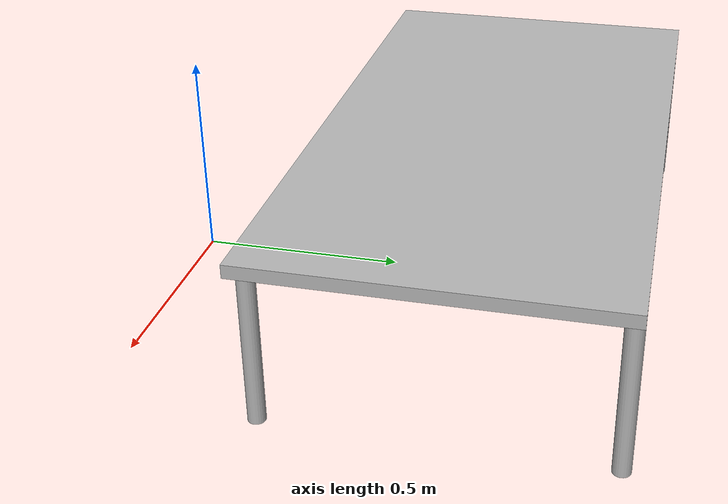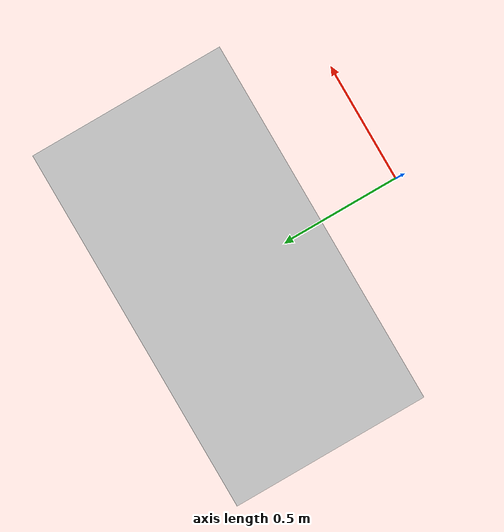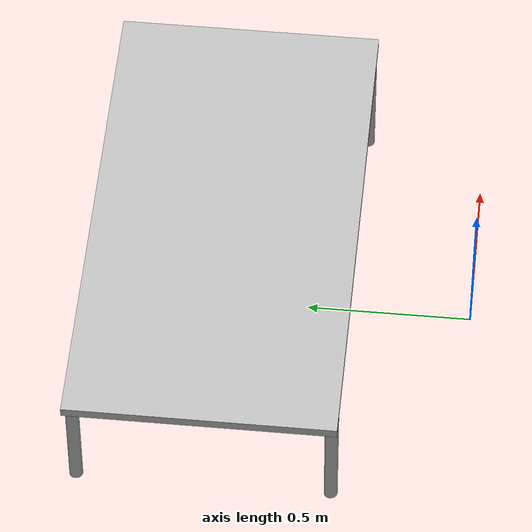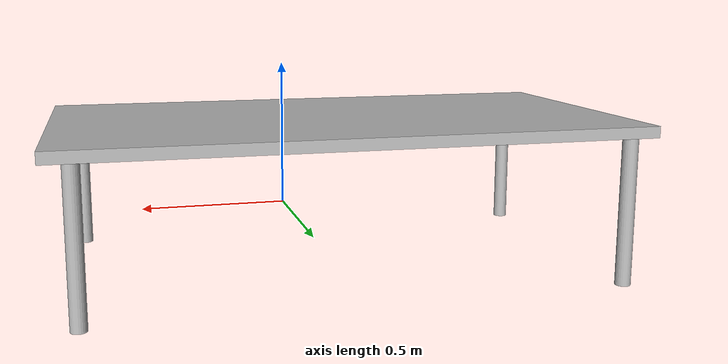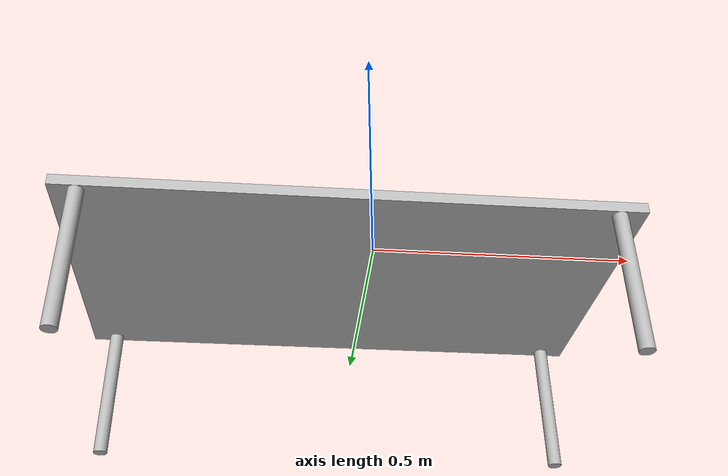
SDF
<?xml version="1.0" ?>
<sdf version="1.5">
  <model name="table">
    <static>true</static>
    <link name="link">
      <collision name="surface">
        <pose>0 0.75 0.4 0 0 0</pose> <!-- テーブル高さを0.4に変更 -->
        <geometry>
          <box>
            <size>1.5 0.8 0.03</size>
          </box>
        </geometry>
        <surface>
          <friction>
            <ode>
              <mu>0.6</mu>
              <mu2>0.6</mu2>
            </ode>
          </friction>
        </surface>
        <drake:proximity_properties>
        <drake:compliant_hydroelastic/>
        <drake:hydroelastic_modulus>1.0e6</drake:hydroelastic_modulus>
      </drake:proximity_properties>
      </collision>
      <visual name="visual1">
        <pose>0 0.75 0.4 0 0 0</pose> <!-- テーブル高さを0.4に変更 -->
        <geometry>
          <box>
            <size>1.5 0.8 0.03</size>
          </box>
        </geometry>
      </visual>
      <!-- Shortened legs to 0.4 meters -->
      <collision name="front_left_leg">
        <pose>0.68 1.13 0.2 0 0 0</pose> <!-- 脚の中心位置を0.2に調整 -->
        <geometry>
          <cylinder>
            <radius>0.02</radius>
            <length>0.4</length>  <!-- 脚の長さを0.4に変更 -->
          </cylinder>
        </geometry>
      </collision>
      <visual name="front_left_leg">
        <pose>0.68 1.13 0.2 0 0 0</pose> <!-- 脚の中心位置を0.2に調整 -->
        <geometry>
          <cylinder>
            <radius>0.02</radius>
            <length>0.4</length>  <!-- 脚の長さを0.4に変更 -->
          </cylinder>
        </geometry>
      </visual>
      <collision name="front_right_leg">
        <pose>0.68 0.37 0.2 0 0 0</pose> <!-- 脚の中心位置を0.2に調整 -->
        <geometry>
          <cylinder>
            <radius>0.02</radius>
            <length>0.4</length>  <!-- 脚の長さを0.4に変更 -->
          </cylinder>
        </geometry>
      </collision>
      <visual name="front_right_leg">
        <pose>0.68 0.37 0.2 0 0 0</pose> <!-- 脚の中心位置を0.2に調整 -->
        <geometry>
          <cylinder>
            <radius>0.02</radius>
            <length>0.4</length>  <!-- 脚の長さを0.4に変更 -->
          </cylinder>
        </geometry>
      </visual>
      <collision name="back_right_leg">
        <pose>-0.68 0.37 0.2 0 0 0</pose> <!-- 脚の中心位置を0.2に調整 -->
        <geometry>
          <cylinder>
            <radius>0.02</radius>
            <length>0.4</length>  <!-- 脚の長さを0.4に変更 -->
          </cylinder>
        </geometry>
      </collision>
      <visual name="back_right_leg">
        <pose>-0.68 0.37 0.2 0 0 0</pose> <!-- 脚の中心位置を0.2に調整 -->
        <geometry>
          <cylinder>
            <radius>0.02</radius>
            <length>0.4</length>  <!-- 脚の長さを0.4に変更 -->
          </cylinder>
        </geometry>
      </visual>
      <collision name="back_left_leg">
        <pose>-0.68 1.13 0.2 0 0 0</pose> <!-- 脚の中心位置を0.2に調整 -->
        <geometry>
          <cylinder>
            <radius>0.02</radius>
            <length>0.4</length>  <!-- 脚の長さを0.4に変更 -->
          </cylinder>
        </geometry>
      </collision>
      <visual name="back_left_leg">
        <pose>-0.68 1.13 0.2 0 0 0</pose> <!-- 脚の中心位置を0.2に調整 -->
        <geometry>
          <cylinder>
            <radius>0.02</radius>
            <length>0.4</length>  <!-- 脚の長さを0.4に変更 -->
          </cylinder>
        </geometry>
      </visual>
    </link>
  </model>
</sdf>
